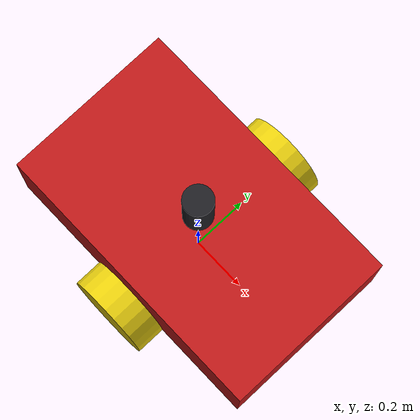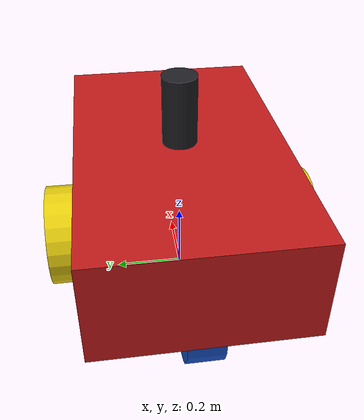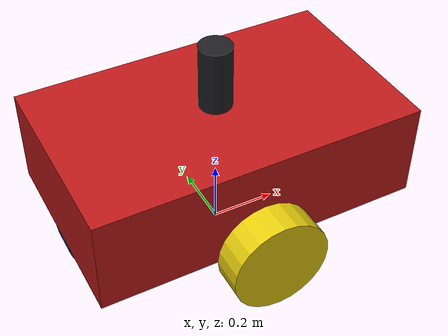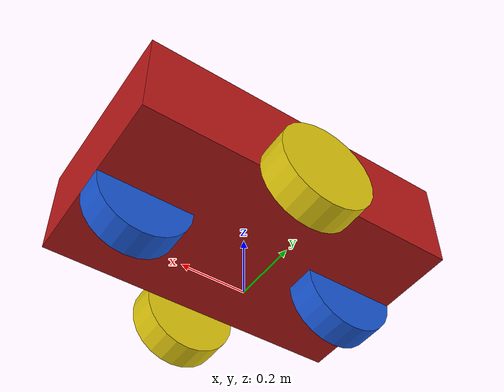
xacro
<?xml version="1.0"?>
<robot name="edge_robot" xmlns:xacro="http://www.ros.org/wiki/xacro">
    <xacro:property name="pi_const" value="3.14159265" />

    <xacro:property name="length" value="1.0"/>
    <xacro:property name="height" value="0.3"/>
    <xacro:property name="breadth" value="0.6"/>
    <xacro:property name="radius" value="0.15"/>
    <xacro:property name="d" value="0.1"/>

    <xacro:property name="body_z" value="${radius + height/2}"/>
    <xacro:property name="body_top_z" value="${radius + height}"/>
    <xacro:property name="wheel_x" value="${length/2 - radius}"/>
    <xacro:property name="wheel_y" value="${breadth/2 + d/2}"/>

    <xacro:property name="density_body" value="2710.0"/>
    <xacro:property name="density_wheel" value="2710.0"/>

    <xacro:property name="m_body"  value="${density_body*length*breadth*height}"/>
    <xacro:property name="m_wheel" value="${density_wheel * pi_const * radius * radius * d}"/>

    <xacro:property name="Ix_box" value="${(1.0/12.0)*m_body*(height*height + breadth*breadth)}"/>
    <xacro:property name="Iy_box" value="${(1.0/12.0)*m_body*(length*length + height*height)}" />
    <xacro:property name="Iz_box" value="${(1.0/12.0)*m_body*(length*length + breadth*breadth)}"/>

    <xacro:property name="Iz_wheel" value="${0.5*m_wheel*radius*radius}"/>
    <xacro:property name="I_wheel"  value="${(1.0/12.0)*m_wheel*(3.0*radius*radius + d*d)}"/>

    <xacro:property name="m_lidar"    value="0.5"/>
    <xacro:property name="Iz_lidar"   value="${0.5*m_lidar*0.1*0.1}"/>
    <xacro:property name="Ixy_lidar"  value="${(1.0/12.0)*m_lidar*(3.0*0.1*0.1 + 0.2*0.2)}"/>

    <xacro:property name="edge_lidar_tilt" value="0.35"/>  <!-- ~20 deg -->
    <xacro:property name="m_edge_lidar" value="0.05"/>
    <xacro:property name="I_edge_lidar" value="0.00002"/>

    <material name="body_red"><color rgba="0.75 0.1 0.1 1"/></material>
    <material name="wheel_yellow"><color rgba="0.9 0.8 0.05 1"/></material>
    <material name="caster_blue"><color rgba="0.1 0.35 0.85 1"/></material>
    <material name="lidar_dark"><color rgba="0.12 0.12 0.14 1"/></material>
    <material name="edge_lidar_orange"><color rgba="1.0 0.55 0.05 1"/></material>

    <xacro:macro name="inertia_body">
        <inertial>
            <origin xyz="0 0 ${height/2}" rpy="0 0 0"/>
            <mass value="${m_body}"/>
            <inertia ixx="${Ix_box}" ixy="0.0" ixz="0.0"
                     iyy="${Iy_box}" iyz="0.0"
                     izz="${Iz_box}"/>
        </inertial>
    </xacro:macro>

    <xacro:macro name="inertia_wheel">
        <inertial>
            <origin xyz="0 0 0" rpy="0 0 0"/>
            <mass value="${m_wheel}"/>
            <inertia ixx="${I_wheel}"  ixy="0.0" ixz="0.0"
                     iyy="${Iz_wheel}" iyz="0.0"
                     izz="${I_wheel}"/>
        </inertial>
    </xacro:macro>

    <xacro:macro name="inertia_lidar">
        <inertial>
            <origin xyz="0 0 0.05" rpy="0 0 0"/>
            <mass value="${m_lidar}"/>
            <inertia ixx="${Ixy_lidar}" ixy="0.0" ixz="0.0"
                     iyy="${Ixy_lidar}" iyz="0.0"
                     izz="${Iz_lidar}"/>
        </inertial>
    </xacro:macro>

    <xacro:property name="cliff_x" value="${length/2 - 0.05}"/>
    <xacro:property name="cliff_y" value="${breadth/2 - 0.05}"/>
    <xacro:property name="cliff_z" value="-0.03"/>  <!-- ~0.12 m above ground -->

    <xacro:macro name="ir_cliff_sensor" params="name x y topic">
        <gazebo reference="base_link">
            <sensor name="${name}" type="gpu_lidar">
                <pose>${x} ${y} ${cliff_z} 0 ${pi_const/2} 0</pose>
                <topic>${topic}</topic>
                <update_rate>20</update_rate>
                <lidar>
                    <scan>
                        <horizontal>
                            <samples>1</samples>
                            <resolution>1</resolution>
                            <min_angle>0</min_angle>
                            <max_angle>0</max_angle>
                        </horizontal>
                    </scan>
                    <range>
                        <min>0.01</min>
                        <max>0.20</max>
                        <resolution>0.005</resolution>
                    </range>
                    <noise>
                        <type>gaussian</type>
                        <mean>0.0</mean>
                        <stddev>0.003</stddev>
                    </noise>
                </lidar>
                <always_on>true</always_on>
            </sensor>
        </gazebo>
    </xacro:macro>

    <link name="base_footprint"/>

    <joint name="base_link_joint" type="fixed">
        <origin xyz="0 0 ${radius}" rpy="0 0 0"/>
        <parent link="base_footprint"/>
        <child  link="base_link"/>
    </joint>

    <link name="base_link">
        <visual>
            <origin xyz="0 0 ${height/2}" rpy="0 0 0"/>
            <geometry>
                <box size="${length} ${breadth} ${height}"/>
            </geometry>
            <material name="body_red"/>
        </visual>
        <collision>
            <origin xyz="0 0 ${height/2}" rpy="0 0 0"/>
            <geometry>
                <box size="${length} ${breadth} ${height}"/>
            </geometry>
        </collision>
        <xacro:inertia_body/>
    </link>

    <gazebo reference="base_link">
        <mu1>0.2</mu1>
        <mu2>0.2</mu2>
    </gazebo>

    <link name="lidar_link">
        <visual>
            <origin xyz="0 0 0.1" rpy="0 0 0"/>
            <geometry>
                <cylinder radius="0.05" length="0.2"/>
            </geometry>
            <material name="lidar_dark"/>
        </visual>
        <collision>
            <origin xyz="0 0 0.1" rpy="0 0 0"/>
            <geometry>
                <cylinder radius="0.05" length="0.2"/>
            </geometry>
        </collision>
        <xacro:inertia_lidar/>
    </link>

    <joint name="lidar_joint" type="fixed">
        <origin xyz="0 0 ${height}" rpy="0 0 0"/>
        <parent link="base_link"/>
        <child  link="lidar_link"/>
    </joint>

    <gazebo reference="lidar_link">
        <sensor name="lidar_3d" type="gpu_lidar">
            <topic>scan_3d</topic>
            <update_rate>10</update_rate>
            <lidar>
                <scan>
                    <horizontal>
                        <samples>360</samples>
                        <resolution>1</resolution>
                        <min_angle>-3.14159265</min_angle>
                        <max_angle>3.14159265</max_angle>
                    </horizontal>
                    <vertical>
                        <samples>16</samples>
                        <resolution>1</resolution>
                        <min_angle>-0.26179939</min_angle>
                        <max_angle>0.26179939</max_angle>
                    </vertical>
                </scan>
                <range>
                    <min>0.1</min>
                    <max>100.0</max>
                    <resolution>0.001</resolution>
                </range>
                <noise>
                    <type>gaussian</type>
                    <mean>0.0</mean>
                    <stddev>0.01</stddev>
                </noise>
            </lidar>
            <always_on>true</always_on>
        </sensor>
    </gazebo>

    <link name="edge_lidar_link">
        <visual>
            <geometry>
                <cylinder radius="0.02" length="0.03"/>
            </geometry>
            <material name="edge_lidar_orange"/>
        </visual>
        <collision>
            <geometry>
                <cylinder radius="0.02" length="0.03"/>
            </geometry>
        </collision>
        <inertial>
            <mass value="${m_edge_lidar}"/>
            <inertia ixx="${I_edge_lidar}" ixy="0.0" ixz="0.0"
                     iyy="${I_edge_lidar}" iyz="0.0"
                     izz="${I_edge_lidar}"/>
        </inertial>
    </link>

    <joint name="edge_lidar_joint" type="fixed">
        <!-- front-bottom of the chassis, angled down -->
        <origin xyz="${length/2 - 0.05} 0 0.02" rpy="0 ${edge_lidar_tilt} 0"/>
        <parent link="base_link"/>
        <child  link="edge_lidar_link"/>
    </joint>

    <gazebo reference="edge_lidar_link">
        <sensor name="edge_lidar" type="gpu_lidar">
            <topic>scan</topic>
            <update_rate>15</update_rate>
            <lidar>
                <scan>
                    <horizontal>
                        <samples>30</samples>
                        <resolution>1</resolution>
                        <min_angle>-0.6</min_angle>
                        <max_angle>0.6</max_angle>
                    </horizontal>
                </scan>
                <range>
                    <min>0.02</min>
                    <max>1.0</max>
                    <resolution>0.005</resolution>
                </range>
                <noise>
                    <type>gaussian</type>
                    <mean>0.0</mean>
                    <stddev>0.005</stddev>
                </noise>
            </lidar>
            <always_on>true</always_on>
            <visualize>true</visualize>
        </sensor>
    </gazebo>

    <xacro:ir_cliff_sensor name="ir_front_left"  x="${cliff_x}"  y="${cliff_y}"  topic="ir_front_left"/>
    <xacro:ir_cliff_sensor name="ir_front_right" x="${cliff_x}"  y="${-cliff_y}" topic="ir_front_right"/>
    <xacro:ir_cliff_sensor name="ir_rear_left"   x="${-cliff_x}" y="${cliff_y}"  topic="ir_rear_left"/>
    <xacro:ir_cliff_sensor name="ir_rear_right"  x="${-cliff_x}" y="${-cliff_y}" topic="ir_rear_right"/>

    <link name="left_wheel_link">
        <visual>
            <origin xyz="0 0 0" rpy="1.5707963 0 0"/>
            <geometry>
                <cylinder radius="${radius}" length="${d}"/>
            </geometry>
            <material name="wheel_yellow"/>
        </visual>
        <collision>
            <origin xyz="0 0 0" rpy="1.5707963 0 0"/>
            <geometry>
                <cylinder radius="${radius}" length="${d}"/>
            </geometry>
        </collision>
        <xacro:inertia_wheel/>
    </link>

    <joint name="left_wheel_joint" type="continuous">
        <parent link="base_link"/>
        <child  link="left_wheel_link"/>
        <origin xyz="0 ${-wheel_y} 0" rpy="0 0 0"/>
        <axis xyz="0 1 0"/>
        <limit effort="50000" velocity="10"/>
        <dynamics damping="1.0" friction="1.0"/>
    </joint>

    <gazebo reference="left_wheel_link">
        <mu1>0.8</mu1>
        <mu2>0.8</mu2>
    </gazebo>

    <link name="right_wheel_link">
        <visual>
            <origin xyz="0 0 0" rpy="1.5707963 0 0"/>
            <geometry>
                <cylinder radius="${radius}" length="${d}"/>
            </geometry>
            <material name="wheel_yellow"/>
        </visual>
        <collision>
            <origin xyz="0 0 0" rpy="1.5707963 0 0"/>
            <geometry>
                <cylinder radius="${radius}" length="${d}"/>
            </geometry>
        </collision>
        <xacro:inertia_wheel/>
    </link>

    <joint name="right_wheel_joint" type="continuous">
        <parent link="base_link"/>
        <child  link="right_wheel_link"/>
        <origin xyz="0 ${wheel_y} 0" rpy="0 0 0"/>
        <axis xyz="0 1 0"/>
        <limit effort="50000" velocity="10"/>
        <dynamics damping="1.0" friction="1.0"/>
    </joint>

    <gazebo reference="right_wheel_link">
        <mu1>0.8</mu1>
        <mu2>0.8</mu2>
    </gazebo>

    <link name="caster1_link">
        <visual>
            <origin xyz="0 0 0" rpy="1.5707963 0 0"/>
            <geometry>
                <cylinder radius="${radius}" length="${d}"/>
            </geometry>
            <material name="caster_blue"/>
        </visual>
        <collision>
            <origin xyz="0 0 0" rpy="1.5707963 0 0"/>
            <geometry>
                <cylinder radius="${radius}" length="${d}"/>
            </geometry>
        </collision>
        <xacro:inertia_wheel/>
    </link>

    <joint name="caster1_joint" type="fixed">
        <parent link="base_link"/>
        <child  link="caster1_link"/>
        <origin xyz="${wheel_x} 0 0" rpy="0 0 0"/>
    </joint>

    <gazebo reference="caster1_link">
        <mu1>0.000002</mu1>
        <mu2>0.000002</mu2>
    </gazebo>

    <link name="caster2_link">
        <visual>
            <origin xyz="0 0 0" rpy="1.5707963 0 0"/>
            <geometry>
                <cylinder radius="${radius}" length="${d}"/>
            </geometry>
            <material name="caster_blue"/>
        </visual>
        <collision>
            <origin xyz="0 0 0" rpy="1.5707963 0 0"/>
            <geometry>
                <cylinder radius="${radius}" length="${d}"/>
            </geometry>
        </collision>
        <xacro:inertia_wheel/>
    </link>

    <joint name="caster2_joint" type="fixed">
        <parent link="base_link"/>
        <child  link="caster2_link"/>
        <origin xyz="${-wheel_x} 0 0" rpy="0 0 0"/>
    </joint>

    <gazebo reference="caster2_link">
        <mu1>0.000002</mu1>
        <mu2>0.000002</mu2>
    </gazebo>

    <gazebo>
        <plugin filename="gz-sim-diff-drive-system"
                name="gz::sim::systems::DiffDrive">
            <left_joint>left_wheel_joint</left_joint>
            <right_joint>right_wheel_joint</right_joint>
            <wheel_separation>${2*wheel_y}</wheel_separation>
            <wheel_radius>${radius}</wheel_radius>
            <odom_publish_frequency>20</odom_publish_frequency>
            <topic>cmd_vel</topic>
            <odom_topic>odom</odom_topic>
            <tf_topic>tf</tf_topic>
            <frame_id>odom</frame_id>
            <child_frame_id>base_footprint</child_frame_id>
            <max_linear_acceleration>1.0</max_linear_acceleration>
        </plugin>
    </gazebo>

    <gazebo>
        <plugin filename="gz-sim-joint-state-publisher-system"
                name="gz::sim::systems::JointStatePublisher">
            <joint_name>left_wheel_joint</joint_name>
            <joint_name>right_wheel_joint</joint_name>
            <topic>joint_states</topic>
        </plugin>
    </gazebo>

</robot>
